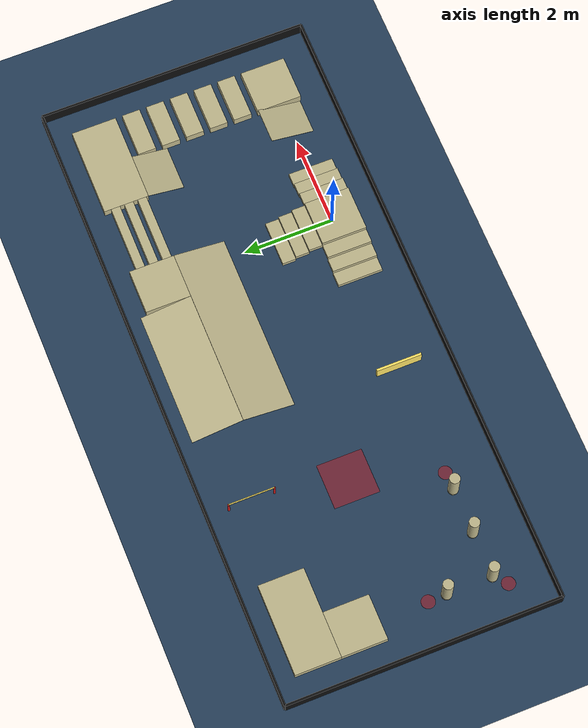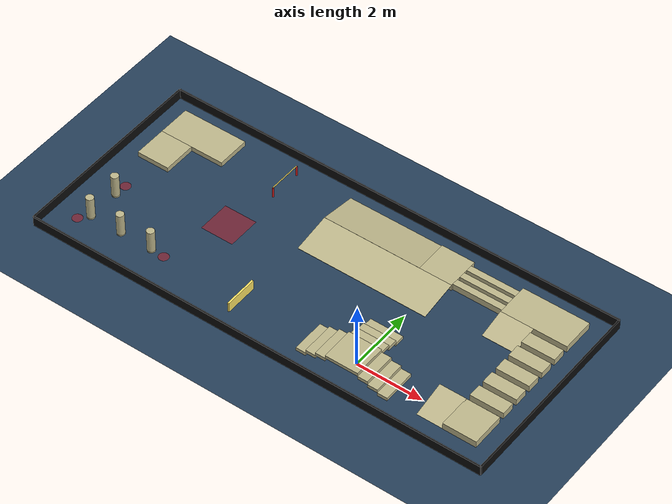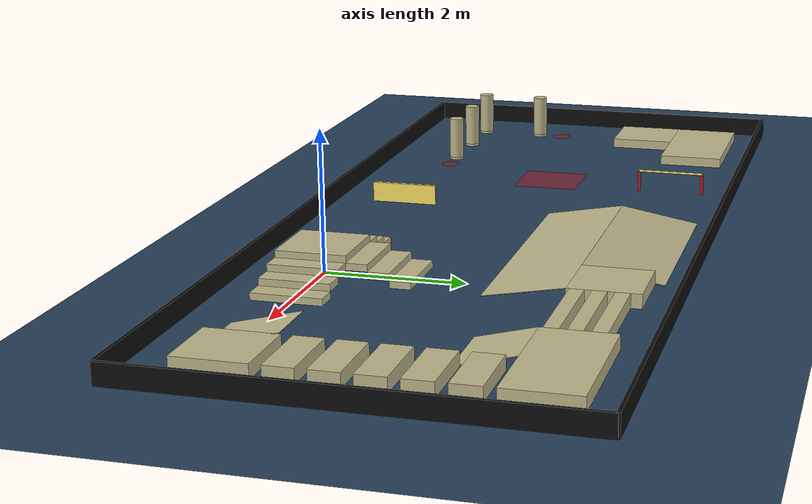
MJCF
<mujoco model="nav_tools terrain A_C">
  <statistic center="-5.5 1.9 0.4" extent="5.0" />
  <visual>
    <headlight diffuse="0.6 0.6 0.6" ambient="0.3 0.3 0.3" specular="0 0 0" />
    <rgba haze="0.15 0.25 0.35 1" />
    <global azimuth="90" elevation="-20" />
  </visual>
  <asset>
    <texture type="skybox" builtin="gradient" rgb1="0.3 0.5 0.7" rgb2="0 0 0" width="512" height="3072" />
    <texture type="2d" name="groundplane" builtin="checker" mark="edge" rgb1="0.2 0.3 0.4" rgb2="0.1 0.2 0.3" markrgb="0.8 0.8 0.8" width="300" height="300" />
    <material name="groundplane" texture="groundplane" texuniform="true" texrepeat="5 5" reflectance="0.2" />
  </asset>
  <worldbody>
    <!-- 比赛地图基准地面。 -->
    <geom name="floor" size="0 0 0.05" type="plane" material="groundplane" />
    <!-- 14m x 6m outer boundary transformed from A_bian: x_C=y_bian, y_C=-x_bian. -->
    <geom name="border_x_min" pos="-9.5 1.9 0.15" type="box" size="0.025 3.0 0.15" rgba="0.05 0.05 0.05 1" />
    <geom name="border_x_max" pos="4.5 1.9 0.15" type="box" size="0.025 3.0 0.15" rgba="0.05 0.05 0.05 1" />
    <geom name="border_y_min" pos="-2.5 -1.1 0.15" type="box" size="7.0 0.025 0.15" rgba="0.05 0.05 0.05 1" />
    <geom name="border_y_max" pos="-2.5 4.9 0.15" type="box" size="7.0 0.025 0.15" rgba="0.05 0.05 0.05 1" />
    <!-- 高墙：机器人需从上方跃过或攀爬通过，自动/遥控均可计分。 -->
    <geom pos="-3.620583 -0.010049 0.15" type="box" size="0.025 0.5 0.15" quat="1 0 0 0" rgba="1.0 0.9 0.4 1.0" />
    <!-- 砂砾碎木坑：L 形障碍，需从 1m 短边进入或离开，完整通过才计分。 -->
    <geom pos="-8.470246 2.97224 0.075" type="box" size="0.5 0.5 0.075" quat="0.707106781 0 0 0.707106781" rgba="0.75 0.72 0.55 1.0" />
    <geom pos="-7.970246 3.97224 0.075" type="box" size="0.5 1.0 0.075" quat="0.707106781 0 0 0.707106781" rgba="0.75 0.72 0.55 1.0" />
    <!-- 限高杆：机器人需从横杆下方通过，碰落横杆则越障失败。 -->
    <geom pos="-5.219014 4.406386 0.155" type="cylinder" size="0.025 0.155" quat="0.707106781 0 0 -0.707106781" rgba="0.8 0.1 0.1 1.0" />
    <geom pos="-5.219014 3.406386 0.155" type="cylinder" size="0.025 0.155" quat="0.707106781 0 0 -0.707106781" rgba="0.8 0.1 0.1 1.0" />
    <geom pos="-5.219014 3.906386 0.325" type="cylinder" size="0.015 0.5" quat="0.5 -0.5 -0.5 -0.5" rgba="1.0 0.9 0.4 1.0" />
    <!-- 启动区：规则允许地面和 T 字形台阶上各一个启动区，机器人需完全纳入启动区后开始。 -->
    <geom pos="-5.5 1.9 0" type="box" size="0.5 0.5 0.001" rgba="1.0 0.0 0.0 0.35" contype="0" conaffinity="0" />
    <!-- T 字形台阶：可选启动区之一在最高平台；通过时每一级台阶顶面需至少接触一次。 -->
    <geom pos="-1.325629 -0.037815 0.05" type="box" size="0.15 0.5 0.05" quat="1 0 0 0" rgba="0.75 0.72 0.55 1.0" />
    <geom pos="-1.025629 -0.037815 0.15" type="box" size="0.15 0.5 0.05" quat="1 0 0 0" rgba="0.75 0.72 0.55 1.0" />
    <geom pos="-0.725629 -0.037815 0.25" type="box" size="0.15 0.5 0.05" quat="1 0 0 0" rgba="0.75 0.72 0.55 1.0" />
    <geom pos="-0.075629 -0.037815 0.35" type="box" size="0.5 0.5 0.05" quat="1 0 0 0" rgba="0.75 0.72 0.55 1.0" />
    <geom pos="0.574371 -0.037815 0.25" type="box" size="0.15 0.5 0.05" quat="1 0 0 0" rgba="0.75 0.72 0.55 1.0" />
    <geom pos="0.874371 -0.037815 0.15" type="box" size="0.15 0.5 0.05" quat="1 0 0 0" rgba="0.75 0.72 0.55 1.0" />
    <geom pos="1.174371 -0.037815 0.05" type="box" size="0.15 0.5 0.05" quat="1 0 0 0" rgba="0.75 0.72 0.55 1.0" />
    <geom pos="-0.075629 0.612185 0.25" type="box" size="0.15 0.5 0.05" quat="0.707106781 0 0 -0.707106781" rgba="0.75 0.72 0.55 1.0" />
    <geom pos="-0.075629 0.912185 0.15" type="box" size="0.15 0.5 0.05" quat="0.707106781 0 0 -0.707106781" rgba="0.75 0.72 0.55 1.0" />
    <geom pos="-0.075629 1.212185 0.05" type="box" size="0.15 0.5 0.05" quat="0.707106781 0 0 -0.707106781" rgba="0.75 0.72 0.55 1.0" />
    <!-- 大斜坡、木桥 A / 木桥 B：大斜坡需满足长边行走距离要求；木桥需从一侧平台经木桥到达另一侧平台。 -->
    <geom pos="2.540216 0.040352 0.1" type="box" size="0.40 0.5 0.005" quat="0.992546088 0.121869866 0 0" rgba="0.75 0.72 0.55 1.0" />
    <geom pos="3.420216 0.040352 0.1" type="box" size="0.5 0.5 0.10" quat="0.707106781 0 0 -0.707106781" rgba="0.75 0.72 0.55 1.0" />
    <geom pos="3.420216 0.890352 0.1" type="box" size="0.2 0.5 0.10" quat="0.707106781 0 0 -0.707106781" rgba="0.75 0.72 0.55 1.0" />
    <geom pos="3.420216 1.440352 0.1" type="box" size="0.2 0.5 0.10" quat="0.707106781 0 0 -0.707106781" rgba="0.75 0.72 0.55 1.0" />
    <geom pos="3.420216 1.990352 0.1" type="box" size="0.2 0.5 0.10" quat="0.707106781 0 0 -0.707106781" rgba="0.75 0.72 0.55 1.0" />
    <geom pos="3.420216 2.540352 0.1" type="box" size="0.2 0.5 0.10" quat="0.707106781 0 0 -0.707106781" rgba="0.75 0.72 0.55 1.0" />
    <geom pos="3.420216 3.090352 0.1" type="box" size="0.2 0.5 0.10" quat="0.707106781 0 0 -0.707106781" rgba="0.75 0.72 0.55 1.0" />
    <geom pos="2.920216 3.940352 0.1" type="box" size="0.5 1.0 0.10" quat="0.707106781 0 0 -0.707106781" rgba="0.75 0.72 0.55 1.0" />
    <geom pos="2.420216 3.040552 0.0951" type="box" size="0.4133 0.5 0.005" quat="0.701836142 0.086174413 0.086174413 -0.701836142" rgba="0.75 0.72 0.55 1.0" />
    <geom pos="1.170216 3.590352 0.1" type="box" size="0.1 0.75 0.10" quat="0.707106781 0 0 -0.707106781" rgba="0.75 0.72 0.55 1.0" />
    <geom pos="1.170216 3.890352 0.1" type="box" size="0.1 0.75 0.10" quat="0.707106781 0 0 -0.707106781" rgba="0.75 0.72 0.55 1.0" />
    <geom pos="1.170216 4.190352 0.1" type="box" size="0.1 0.75 0.10" quat="0.707106781 0 0 -0.707106781" rgba="0.75 0.72 0.55 1.0" />
    <geom pos="-0.079784 3.940352 0.1" type="box" size="0.5 0.5 0.10" quat="0.707106781 0 0 -0.707106781" rgba="0.75 0.72 0.55 1.0" />
    <geom pos="-1.579784 2.874152 0.0951" type="box" size="0.5759 2.0 0.005" quat="0.704416012 0.061628579 0.061628579 -0.704416012" rgba="0.75 0.72 0.55 1.0" />
    <geom pos="-2.079784 4.008452 0.0951" type="box" size="0.5759 1.5 0.005" quat="0.704416012 -0.061628579 -0.061628579 -0.704416012" rgba="0.75 0.72 0.55 1.0" />
    <!-- 直角绕杆：需按 S 形绕过竖杆，并经过两端及拐角必达区。 -->
    <geom pos="-6.121128 0.005994 0" type="cylinder" size="0.15 0.001" rgba="1.0 0.0 0.0 0.35" contype="0" conaffinity="0" />
    <geom pos="-8.521128 1.405994 0" type="cylinder" size="0.15 0.001" rgba="1.0 0.0 0.0 0.35" contype="0" conaffinity="0" />
    <geom pos="-8.771128 -0.244006 0" type="cylinder" size="0.15 0.001" rgba="1.0 0.0 0.0 0.35" contype="0" conaffinity="0" />
    <geom name="slalom_pole_1_base" pos="-6.521128 0.005994 0.02" type="cylinder" size="0.115 0.02" rgba="0.75 0.72 0.55 1.0" />
    <geom name="slalom_pole_1_shaft" pos="-6.521128 0.005994 0.37" type="cylinder" size="0.115 0.33" rgba="0.75 0.72 0.55 1.0" />
    <geom name="slalom_pole_2_base" pos="-7.521128 0.005994 0.02" type="cylinder" size="0.115 0.02" rgba="0.75 0.72 0.55 1.0" />
    <geom name="slalom_pole_2_shaft" pos="-7.521128 0.005994 0.37" type="cylinder" size="0.115 0.33" rgba="0.75 0.72 0.55 1.0" />
    <geom name="slalom_pole_3_base" pos="-8.521128 0.005994 0.02" type="cylinder" size="0.115 0.02" rgba="0.75 0.72 0.55 1.0" />
    <geom name="slalom_pole_3_shaft" pos="-8.521128 0.005994 0.37" type="cylinder" size="0.115 0.33" rgba="0.75 0.72 0.55 1.0" />
    <geom name="slalom_pole_4_base" pos="-8.521128 1.005994 0.02" type="cylinder" size="0.115 0.02" rgba="0.75 0.72 0.55 1.0" />
    <geom name="slalom_pole_4_shaft" pos="-8.521128 1.005994 0.37" type="cylinder" size="0.115 0.33" rgba="0.75 0.72 0.55 1.0" />
  </worldbody>
</mujoco>
